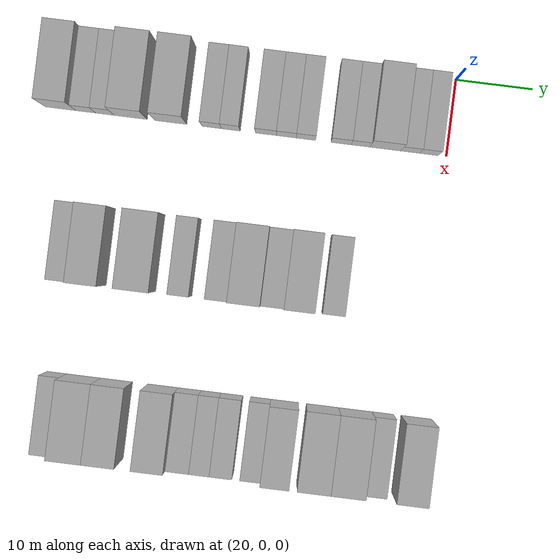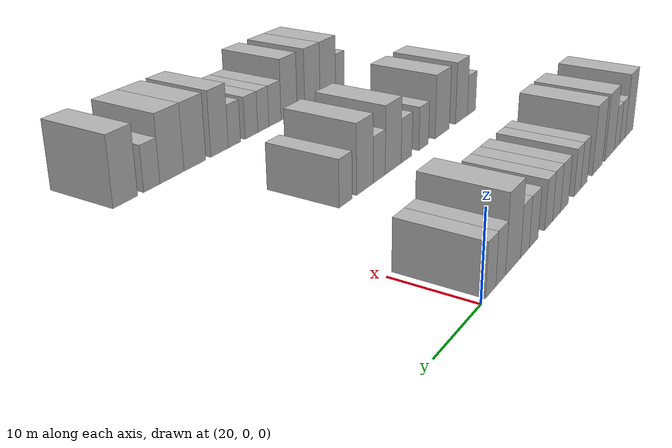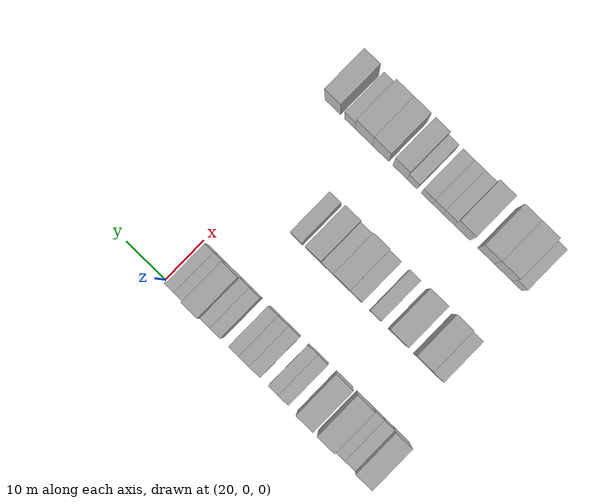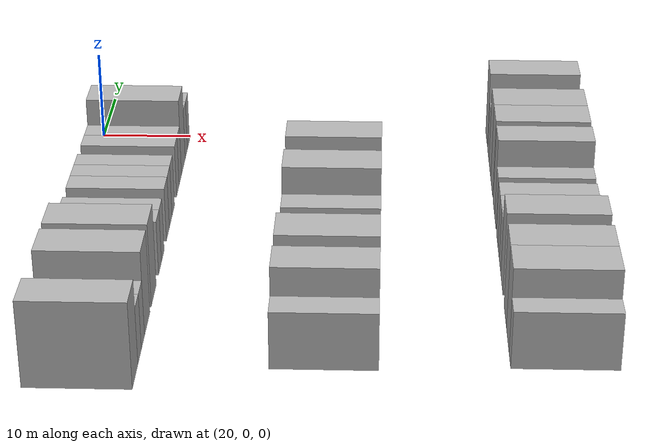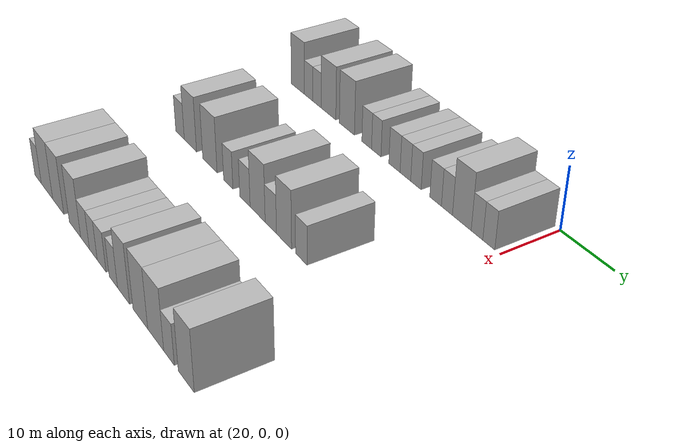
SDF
<sdf version="1.6">
 <world name="default">
  <model name="building_51">
   <static>1</static>
   <pose>25.0000 -50.3097 0 0.000000 0.000000 0.000000</pose>
   <link name="link">
    <pose>0 0 4.50 0 0 0</pose>
    <collision name="collision"><geometry><box><size>10.0000 4.0326 9.0000</size></box></geometry></collision>
    <visual name="visual">
     <cast_shadows>0</cast_shadows>
     <geometry><box><size>10.0000 4.0326 9.0000</size></box></geometry>
     <material>
      <script>
       <uri>model://HANNAS_wall/materials/scripts</uri>
       <uri>model://HANNAS_wall/materials/textures</uri>
       <name>vrc/HANNAS_wall</name>
      </script>
     </material>
    </visual>
   </link>
  </model>
  <model name="building_52">
   <static>1</static>
   <pose>25.0000 -47.0149 0 0.000000 0.000000 0.000000</pose>
   <link name="link">
    <pose>0 0 3.00 0 0 0</pose>
    <collision name="collision"><geometry><box><size>10.0000 2.5572 6.0000</size></box></geometry></collision>
    <visual name="visual">
     <cast_shadows>0</cast_shadows>
     <geometry><box><size>10.0000 2.5572 6.0000</size></box></geometry>
     <material>
      <script>
       <uri>model://HANNAS_wall/materials/scripts</uri>
       <uri>model://HANNAS_wall/materials/textures</uri>
       <name>vrc/HANNAS_wall</name>
      </script>
     </material>
    </visual>
   </link>
  </model>
  <model name="building_53">
   <static>1</static>
   <pose>25.0000 -44.5212 0 0.000000 0.000000 0.000000</pose>
   <link name="link">
    <pose>0 0 3.00 0 0 0</pose>
    <collision name="collision"><geometry><box><size>10.0000 2.4300 6.0000</size></box></geometry></collision>
    <visual name="visual">
     <cast_shadows>0</cast_shadows>
     <geometry><box><size>10.0000 2.4300 6.0000</size></box></geometry>
     <material>
      <script>
       <uri>model://HANNAS_wall/materials/scripts</uri>
       <uri>model://HANNAS_wall/materials/textures</uri>
       <name>vrc/HANNAS_wall</name>
      </script>
     </material>
    </visual>
   </link>
  </model>
  <model name="building_54">
   <static>1</static>
   <pose>25.0000 -41.1703 0 0.000000 0.000000 0.000000</pose>
   <link name="link">
    <pose>0 0 4.50 0 0 0</pose>
    <collision name="collision"><geometry><box><size>10.0000 4.2718 9.0000</size></box></geometry></collision>
    <visual name="visual">
     <cast_shadows>0</cast_shadows>
     <geometry><box><size>10.0000 4.2718 9.0000</size></box></geometry>
     <material>
      <script>
       <uri>model://HANNAS_wall/materials/scripts</uri>
       <uri>model://HANNAS_wall/materials/textures</uri>
       <name>vrc/HANNAS_wall</name>
      </script>
     </material>
    </visual>
   </link>
  </model>
  <model name="building_55">
   <static>1</static>
   <pose>25.0000 -35.9543 0 0.000000 0.000000 0.000000</pose>
   <link name="link">
    <pose>0 0 4.50 0 0 0</pose>
    <collision name="collision"><geometry><box><size>10.0000 4.1602 9.0000</size></box></geometry></collision>
    <visual name="visual">
     <cast_shadows>0</cast_shadows>
     <geometry><box><size>10.0000 4.1602 9.0000</size></box></geometry>
     <material>
      <script>
       <uri>model://HANNAS_wall/materials/scripts</uri>
       <uri>model://HANNAS_wall/materials/textures</uri>
       <name>vrc/HANNAS_wall</name>
      </script>
     </material>
    </visual>
   </link>
  </model>
  <model name="building_56">
   <static>1</static>
   <pose>25.0000 -30.5991 0 0.000000 0.000000 0.000000</pose>
   <link name="link">
    <pose>0 0 3.00 0 0 0</pose>
    <collision name="collision"><geometry><box><size>10.0000 2.5501 6.0000</size></box></geometry></collision>
    <visual name="visual">
     <cast_shadows>0</cast_shadows>
     <geometry><box><size>10.0000 2.5501 6.0000</size></box></geometry>
     <material>
      <script>
       <uri>model://HANNAS_wall/materials/scripts</uri>
       <uri>model://HANNAS_wall/materials/textures</uri>
       <name>vrc/HANNAS_wall</name>
      </script>
     </material>
    </visual>
   </link>
  </model>
  <model name="building_57">
   <static>1</static>
   <pose>25.0000 -28.1071 0 0.000000 0.000000 0.000000</pose>
   <link name="link">
    <pose>0 0 3.00 0 0 0</pose>
    <collision name="collision"><geometry><box><size>10.0000 2.4339 6.0000</size></box></geometry></collision>
    <visual name="visual">
     <cast_shadows>0</cast_shadows>
     <geometry><box><size>10.0000 2.4339 6.0000</size></box></geometry>
     <material>
      <script>
       <uri>model://HANNAS_wall/materials/scripts</uri>
       <uri>model://HANNAS_wall/materials/textures</uri>
       <name>vrc/HANNAS_wall</name>
      </script>
     </material>
    </visual>
   </link>
  </model>
  <model name="building_58">
   <static>1</static>
   <pose>25.0000 -23.5045 0 0.000000 0.000000 0.000000</pose>
   <link name="link">
    <pose>0 0 3.00 0 0 0</pose>
    <collision name="collision"><geometry><box><size>10.0000 2.7713 6.0000</size></box></geometry></collision>
    <visual name="visual">
     <cast_shadows>0</cast_shadows>
     <geometry><box><size>10.0000 2.7713 6.0000</size></box></geometry>
     <material>
      <script>
       <uri>model://HANNAS_wall/materials/scripts</uri>
       <uri>model://HANNAS_wall/materials/textures</uri>
       <name>vrc/HANNAS_wall</name>
      </script>
     </material>
    </visual>
   </link>
  </model>
  <model name="building_59">
   <static>1</static>
   <pose>25.0000 -20.8307 0 0.000000 0.000000 0.000000</pose>
   <link name="link">
    <pose>0 0 3.00 0 0 0</pose>
    <collision name="collision"><geometry><box><size>10.0000 2.5764 6.0000</size></box></geometry></collision>
    <visual name="visual">
     <cast_shadows>0</cast_shadows>
     <geometry><box><size>10.0000 2.5764 6.0000</size></box></geometry>
     <material>
      <script>
       <uri>model://HANNAS_wall/materials/scripts</uri>
       <uri>model://HANNAS_wall/materials/textures</uri>
       <name>vrc/HANNAS_wall</name>
      </script>
     </material>
    </visual>
   </link>
  </model>
  <model name="building_60">
   <static>1</static>
   <pose>25.0000 -18.3024 0 0.000000 0.000000 0.000000</pose>
   <link name="link">
    <pose>0 0 3.00 0 0 0</pose>
    <collision name="collision"><geometry><box><size>10.0000 2.4802 6.0000</size></box></geometry></collision>
    <visual name="visual">
     <cast_shadows>0</cast_shadows>
     <geometry><box><size>10.0000 2.4802 6.0000</size></box></geometry>
     <material>
      <script>
       <uri>model://HANNAS_wall/materials/scripts</uri>
       <uri>model://HANNAS_wall/materials/textures</uri>
       <name>vrc/HANNAS_wall</name>
      </script>
     </material>
    </visual>
   </link>
  </model>
  <model name="building_61">
   <static>1</static>
   <pose>25.0000 -13.7433 0 0.000000 0.000000 0.000000</pose>
   <link name="link">
    <pose>0 0 3.00 0 0 0</pose>
    <collision name="collision"><geometry><box><size>10.0000 2.6382 6.0000</size></box></geometry></collision>
    <visual name="visual">
     <cast_shadows>0</cast_shadows>
     <geometry><box><size>10.0000 2.6382 6.0000</size></box></geometry>
     <material>
      <script>
       <uri>model://HANNAS_wall/materials/scripts</uri>
       <uri>model://HANNAS_wall/materials/textures</uri>
       <name>vrc/HANNAS_wall</name>
      </script>
     </material>
    </visual>
   </link>
  </model>
  <model name="building_62">
   <static>1</static>
   <pose>25.0000 -11.1985 0 0.000000 0.000000 0.000000</pose>
   <link name="link">
    <pose>0 0 3.00 0 0 0</pose>
    <collision name="collision"><geometry><box><size>10.0000 2.4514 6.0000</size></box></geometry></collision>
    <visual name="visual">
     <cast_shadows>0</cast_shadows>
     <geometry><box><size>10.0000 2.4514 6.0000</size></box></geometry>
     <material>
      <script>
       <uri>model://HANNAS_wall/materials/scripts</uri>
       <uri>model://HANNAS_wall/materials/textures</uri>
       <name>vrc/HANNAS_wall</name>
      </script>
     </material>
    </visual>
   </link>
  </model>
  <model name="building_63">
   <static>1</static>
   <pose>25.0000 -7.9587 0 0.000000 0.000000 0.000000</pose>
   <link name="link">
    <pose>0 0 4.50 0 0 0</pose>
    <collision name="collision"><geometry><box><size>10.0000 4.0282 9.0000</size></box></geometry></collision>
    <visual name="visual">
     <cast_shadows>0</cast_shadows>
     <geometry><box><size>10.0000 4.0282 9.0000</size></box></geometry>
     <material>
      <script>
       <uri>model://HANNAS_wall/materials/scripts</uri>
       <uri>model://HANNAS_wall/materials/textures</uri>
       <name>vrc/HANNAS_wall</name>
      </script>
     </material>
    </visual>
   </link>
  </model>
  <model name="building_64">
   <static>1</static>
   <pose>25.0000 -4.7389 0 0.000000 0.000000 0.000000</pose>
   <link name="link">
    <pose>0 0 3.00 0 0 0</pose>
    <collision name="collision"><geometry><box><size>10.0000 2.4114 6.0000</size></box></geometry></collision>
    <visual name="visual">
     <cast_shadows>0</cast_shadows>
     <geometry><box><size>10.0000 2.4114 6.0000</size></box></geometry>
     <material>
      <script>
       <uri>model://HANNAS_wall/materials/scripts</uri>
       <uri>model://HANNAS_wall/materials/textures</uri>
       <name>vrc/HANNAS_wall</name>
      </script>
     </material>
    </visual>
   </link>
  </model>
  <model name="building_65">
   <static>1</static>
   <pose>25.0000 -2.3086 0 0.000000 0.000000 0.000000</pose>
   <link name="link">
    <pose>0 0 3.00 0 0 0</pose>
    <collision name="collision"><geometry><box><size>10.0000 2.4492 6.0000</size></box></geometry></collision>
    <visual name="visual">
     <cast_shadows>0</cast_shadows>
     <geometry><box><size>10.0000 2.4492 6.0000</size></box></geometry>
     <material>
      <script>
       <uri>model://HANNAS_wall/materials/scripts</uri>
       <uri>model://HANNAS_wall/materials/textures</uri>
       <name>vrc/HANNAS_wall</name>
      </script>
     </material>
    </visual>
   </link>
  </model>
  <model name="building_182">
   <static>1</static>
   <pose>47.0000 -47.1529 0 0.000000 0.000000 0.000000</pose>
   <link name="link">
    <pose>0 0 3.00 0 0 0</pose>
    <collision name="collision"><geometry><box><size>10.0000 2.8951 6.0000</size></box></geometry></collision>
    <visual name="visual">
     <cast_shadows>0</cast_shadows>
     <geometry><box><size>10.0000 2.8951 6.0000</size></box></geometry>
     <material>
      <script>
       <uri>model://HANNAS_wall/materials/scripts</uri>
       <uri>model://HANNAS_wall/materials/textures</uri>
       <name>vrc/HANNAS_wall</name>
      </script>
     </material>
    </visual>
   </link>
  </model>
  <model name="building_183">
   <static>1</static>
   <pose>47.0000 -43.6938 0 0.000000 0.000000 0.000000</pose>
   <link name="link">
    <pose>0 0 4.50 0 0 0</pose>
    <collision name="collision"><geometry><box><size>10.0000 4.0230 9.0000</size></box></geometry></collision>
    <visual name="visual">
     <cast_shadows>0</cast_shadows>
     <geometry><box><size>10.0000 4.0230 9.0000</size></box></geometry>
     <material>
      <script>
       <uri>model://HANNAS_wall/materials/scripts</uri>
       <uri>model://HANNAS_wall/materials/textures</uri>
       <name>vrc/HANNAS_wall</name>
      </script>
     </material>
    </visual>
   </link>
  </model>
  <model name="building_184">
   <static>1</static>
   <pose>47.0000 -37.4510 0 0.000000 0.000000 0.000000</pose>
   <link name="link">
    <pose>0 0 4.50 0 0 0</pose>
    <collision name="collision"><geometry><box><size>10.0000 4.4626 9.0000</size></box></geometry></collision>
    <visual name="visual">
     <cast_shadows>0</cast_shadows>
     <geometry><box><size>10.0000 4.4626 9.0000</size></box></geometry>
     <material>
      <script>
       <uri>model://HANNAS_wall/materials/scripts</uri>
       <uri>model://HANNAS_wall/materials/textures</uri>
       <name>vrc/HANNAS_wall</name>
      </script>
     </material>
    </visual>
   </link>
  </model>
  <model name="building_185">
   <static>1</static>
   <pose>47.0000 -31.8492 0 0.000000 0.000000 0.000000</pose>
   <link name="link">
    <pose>0 0 3.00 0 0 0</pose>
    <collision name="collision"><geometry><box><size>10.0000 2.7410 6.0000</size></box></geometry></collision>
    <visual name="visual">
     <cast_shadows>0</cast_shadows>
     <geometry><box><size>10.0000 2.7410 6.0000</size></box></geometry>
     <material>
      <script>
       <uri>model://HANNAS_wall/materials/scripts</uri>
       <uri>model://HANNAS_wall/materials/textures</uri>
       <name>vrc/HANNAS_wall</name>
      </script>
     </material>
    </visual>
   </link>
  </model>
  <model name="building_186">
   <static>1</static>
   <pose>47.0000 -27.0108 0 0.000000 0.000000 0.000000</pose>
   <link name="link">
    <pose>0 0 3.00 0 0 0</pose>
    <collision name="collision"><geometry><box><size>10.0000 2.9359 6.0000</size></box></geometry></collision>
    <visual name="visual">
     <cast_shadows>0</cast_shadows>
     <geometry><box><size>10.0000 2.9359 6.0000</size></box></geometry>
     <material>
      <script>
       <uri>model://HANNAS_wall/materials/scripts</uri>
       <uri>model://HANNAS_wall/materials/textures</uri>
       <name>vrc/HANNAS_wall</name>
      </script>
     </material>
    </visual>
   </link>
  </model>
  <model name="building_187">
   <static>1</static>
   <pose>47.0000 -23.4751 0 0.000000 0.000000 0.000000</pose>
   <link name="link">
    <pose>0 0 4.50 0 0 0</pose>
    <collision name="collision"><geometry><box><size>10.0000 4.1356 9.0000</size></box></geometry></collision>
    <visual name="visual">
     <cast_shadows>0</cast_shadows>
     <geometry><box><size>10.0000 4.1356 9.0000</size></box></geometry>
     <material>
      <script>
       <uri>model://HANNAS_wall/materials/scripts</uri>
       <uri>model://HANNAS_wall/materials/textures</uri>
       <name>vrc/HANNAS_wall</name>
      </script>
     </material>
    </visual>
   </link>
  </model>
  <model name="building_188">
   <static>1</static>
   <pose>47.0000 -19.9073 0 0.000000 0.000000 0.000000</pose>
   <link name="link">
    <pose>0 0 3.00 0 0 0</pose>
    <collision name="collision"><geometry><box><size>10.0000 3.0000 6.0000</size></box></geometry></collision>
    <visual name="visual">
     <cast_shadows>0</cast_shadows>
     <geometry><box><size>10.0000 3.0000 6.0000</size></box></geometry>
     <material>
      <script>
       <uri>model://HANNAS_wall/materials/scripts</uri>
       <uri>model://HANNAS_wall/materials/textures</uri>
       <name>vrc/HANNAS_wall</name>
      </script>
     </material>
    </visual>
   </link>
  </model>
  <model name="building_189">
   <static>1</static>
   <pose>47.0000 -16.4712 0 0.000000 0.000000 0.000000</pose>
   <link name="link">
    <pose>0 0 4.50 0 0 0</pose>
    <collision name="collision"><geometry><box><size>10.0000 3.8722 9.0000</size></box></geometry></collision>
    <visual name="visual">
     <cast_shadows>0</cast_shadows>
     <geometry><box><size>10.0000 3.8722 9.0000</size></box></geometry>
     <material>
      <script>
       <uri>model://HANNAS_wall/materials/scripts</uri>
       <uri>model://HANNAS_wall/materials/textures</uri>
       <name>vrc/HANNAS_wall</name>
      </script>
     </material>
    </visual>
   </link>
  </model>
  <model name="building_190">
   <static>1</static>
   <pose>47.0000 -12.1024 0 0.000000 0.000000 0.000000</pose>
   <link name="link">
    <pose>0 0 3.00 0 0 0</pose>
    <collision name="collision"><geometry><box><size>10.0000 2.8652 6.0000</size></box></geometry></collision>
    <visual name="visual">
     <cast_shadows>0</cast_shadows>
     <geometry><box><size>10.0000 2.8652 6.0000</size></box></geometry>
     <material>
      <script>
       <uri>model://HANNAS_wall/materials/scripts</uri>
       <uri>model://HANNAS_wall/materials/textures</uri>
       <name>vrc/HANNAS_wall</name>
      </script>
     </material>
    </visual>
   </link>
  </model>
  <model name="building_297">
   <static>1</static>
   <pose>69.0000 -46.5915 0 0.000000 0.000000 0.000000</pose>
   <link name="link">
    <pose>0 0 3.00 0 0 0</pose>
    <collision name="collision"><geometry><box><size>10.0000 2.5864 6.0000</size></box></geometry></collision>
    <visual name="visual">
     <cast_shadows>0</cast_shadows>
     <geometry><box><size>10.0000 2.5864 6.0000</size></box></geometry>
     <material>
      <script>
       <uri>model://HANNAS_wall/materials/scripts</uri>
       <uri>model://HANNAS_wall/materials/textures</uri>
       <name>vrc/HANNAS_wall</name>
      </script>
     </material>
    </visual>
   </link>
  </model>
  <model name="building_298">
   <static>1</static>
   <pose>69.0000 -43.0797 0 0.000000 0.000000 0.000000</pose>
   <link name="link">
    <pose>0 0 4.50 0 0 0</pose>
    <collision name="collision"><geometry><box><size>10.0000 4.4372 9.0000</size></box></geometry></collision>
    <visual name="visual">
     <cast_shadows>0</cast_shadows>
     <geometry><box><size>10.0000 4.4372 9.0000</size></box></geometry>
     <material>
      <script>
       <uri>model://HANNAS_wall/materials/scripts</uri>
       <uri>model://HANNAS_wall/materials/textures</uri>
       <name>vrc/HANNAS_wall</name>
      </script>
     </material>
    </visual>
   </link>
  </model>
  <model name="building_299">
   <static>1</static>
   <pose>69.0000 -38.7917 0 0.000000 0.000000 0.000000</pose>
   <link name="link">
    <pose>0 0 4.50 0 0 0</pose>
    <collision name="collision"><geometry><box><size>10.0000 4.1389 9.0000</size></box></geometry></collision>
    <visual name="visual">
     <cast_shadows>0</cast_shadows>
     <geometry><box><size>10.0000 4.1389 9.0000</size></box></geometry>
     <material>
      <script>
       <uri>model://HANNAS_wall/materials/scripts</uri>
       <uri>model://HANNAS_wall/materials/textures</uri>
       <name>vrc/HANNAS_wall</name>
      </script>
     </material>
    </visual>
   </link>
  </model>
  <model name="building_300">
   <static>1</static>
   <pose>69.0000 -32.7095 0 0.000000 0.000000 0.000000</pose>
   <link name="link">
    <pose>0 0 4.50 0 0 0</pose>
    <collision name="collision"><geometry><box><size>10.0000 4.0255 9.0000</size></box></geometry></collision>
    <visual name="visual">
     <cast_shadows>0</cast_shadows>
     <geometry><box><size>10.0000 4.0255 9.0000</size></box></geometry>
     <material>
      <script>
       <uri>model://HANNAS_wall/materials/scripts</uri>
       <uri>model://HANNAS_wall/materials/textures</uri>
       <name>vrc/HANNAS_wall</name>
      </script>
     </material>
    </visual>
   </link>
  </model>
  <model name="building_301">
   <static>1</static>
   <pose>69.0000 -29.2114 0 0.000000 0.000000 0.000000</pose>
   <link name="link">
    <pose>0 0 3.00 0 0 0</pose>
    <collision name="collision"><geometry><box><size>10.0000 2.9707 6.0000</size></box></geometry></collision>
    <visual name="visual">
     <cast_shadows>0</cast_shadows>
     <geometry><box><size>10.0000 2.9707 6.0000</size></box></geometry>
     <material>
      <script>
       <uri>model://HANNAS_wall/materials/scripts</uri>
       <uri>model://HANNAS_wall/materials/textures</uri>
       <name>vrc/HANNAS_wall</name>
      </script>
     </material>
    </visual>
   </link>
  </model>
  <model name="building_302">
   <static>1</static>
   <pose>69.0000 -26.4335 0 0.000000 0.000000 0.000000</pose>
   <link name="link">
    <pose>0 0 3.00 0 0 0</pose>
    <collision name="collision"><geometry><box><size>10.0000 2.5851 6.0000</size></box></geometry></collision>
    <visual name="visual">
     <cast_shadows>0</cast_shadows>
     <geometry><box><size>10.0000 2.5851 6.0000</size></box></geometry>
     <material>
      <script>
       <uri>model://HANNAS_wall/materials/scripts</uri>
       <uri>model://HANNAS_wall/materials/textures</uri>
       <name>vrc/HANNAS_wall</name>
      </script>
     </material>
    </visual>
   </link>
  </model>
  <model name="building_303">
   <static>1</static>
   <pose>69.0000 -23.7086 0 0.000000 0.000000 0.000000</pose>
   <link name="link">
    <pose>0 0 3.00 0 0 0</pose>
    <collision name="collision"><geometry><box><size>10.0000 2.8647 6.0000</size></box></geometry></collision>
    <visual name="visual">
     <cast_shadows>0</cast_shadows>
     <geometry><box><size>10.0000 2.8647 6.0000</size></box></geometry>
     <material>
      <script>
       <uri>model://HANNAS_wall/materials/scripts</uri>
       <uri>model://HANNAS_wall/materials/textures</uri>
       <name>vrc/HANNAS_wall</name>
      </script>
     </material>
    </visual>
   </link>
  </model>
  <model name="building_304">
   <static>1</static>
   <pose>69.0000 -19.9755 0 0.000000 0.000000 0.000000</pose>
   <link name="link">
    <pose>0 0 3.00 0 0 0</pose>
    <collision name="collision"><geometry><box><size>10.0000 2.6016 6.0000</size></box></geometry></collision>
    <visual name="visual">
     <cast_shadows>0</cast_shadows>
     <geometry><box><size>10.0000 2.6016 6.0000</size></box></geometry>
     <material>
      <script>
       <uri>model://HANNAS_wall/materials/scripts</uri>
       <uri>model://HANNAS_wall/materials/textures</uri>
       <name>vrc/HANNAS_wall</name>
      </script>
     </material>
    </visual>
   </link>
  </model>
  <model name="building_305">
   <static>1</static>
   <pose>69.0000 -16.8618 0 0.000000 0.000000 0.000000</pose>
   <link name="link">
    <pose>0 0 4.50 0 0 0</pose>
    <collision name="collision"><geometry><box><size>10.0000 3.6258 9.0000</size></box></geometry></collision>
    <visual name="visual">
     <cast_shadows>0</cast_shadows>
     <geometry><box><size>10.0000 3.6258 9.0000</size></box></geometry>
     <material>
      <script>
       <uri>model://HANNAS_wall/materials/scripts</uri>
       <uri>model://HANNAS_wall/materials/textures</uri>
       <name>vrc/HANNAS_wall</name>
      </script>
     </material>
    </visual>
   </link>
  </model>
  <model name="building_306">
   <static>1</static>
   <pose>69.0000 -11.9436 0 0.000000 0.000000 0.000000</pose>
   <link name="link">
    <pose>0 0 4.50 0 0 0</pose>
    <collision name="collision"><geometry><box><size>10.0000 4.2104 9.0000</size></box></geometry></collision>
    <visual name="visual">
     <cast_shadows>0</cast_shadows>
     <geometry><box><size>10.0000 4.2104 9.0000</size></box></geometry>
     <material>
      <script>
       <uri>model://HANNAS_wall/materials/scripts</uri>
       <uri>model://HANNAS_wall/materials/textures</uri>
       <name>vrc/HANNAS_wall</name>
      </script>
     </material>
    </visual>
   </link>
  </model>
  <model name="building_307">
   <static>1</static>
   <pose>69.0000 -7.6569 0 0.000000 0.000000 0.000000</pose>
   <link name="link">
    <pose>0 0 4.50 0 0 0</pose>
    <collision name="collision"><geometry><box><size>10.0000 4.3631 9.0000</size></box></geometry></collision>
    <visual name="visual">
     <cast_shadows>0</cast_shadows>
     <geometry><box><size>10.0000 4.3631 9.0000</size></box></geometry>
     <material>
      <script>
       <uri>model://HANNAS_wall/materials/scripts</uri>
       <uri>model://HANNAS_wall/materials/textures</uri>
       <name>vrc/HANNAS_wall</name>
      </script>
     </material>
    </visual>
   </link>
  </model>
  <model name="building_308">
   <static>1</static>
   <pose>69.0000 -4.0792 0 0.000000 0.000000 0.000000</pose>
   <link name="link">
    <pose>0 0 3.00 0 0 0</pose>
    <collision name="collision"><geometry><box><size>10.0000 2.7924 6.0000</size></box></geometry></collision>
    <visual name="visual">
     <cast_shadows>0</cast_shadows>
     <geometry><box><size>10.0000 2.7924 6.0000</size></box></geometry>
     <material>
      <script>
       <uri>model://HANNAS_wall/materials/scripts</uri>
       <uri>model://HANNAS_wall/materials/textures</uri>
       <name>vrc/HANNAS_wall</name>
      </script>
     </material>
    </visual>
   </link>
  </model>
  <model name="building_309">
   <static>1</static>
   <pose>69.0000 0.3165 0 0.000000 0.000000 0.000000</pose>
   <link name="link">
    <pose>0 0 4.50 0 0 0</pose>
    <collision name="collision"><geometry><box><size>10.0000 3.9989 9.0000</size></box></geometry></collision>
    <visual name="visual">
     <cast_shadows>0</cast_shadows>
     <geometry><box><size>10.0000 3.9989 9.0000</size></box></geometry>
     <material>
      <script>
       <uri>model://HANNAS_wall/materials/scripts</uri>
       <uri>model://HANNAS_wall/materials/textures</uri>
       <name>vrc/HANNAS_wall</name>
      </script>
     </material>
    </visual>
   </link>
  </model>
 </world>
</sdf>
